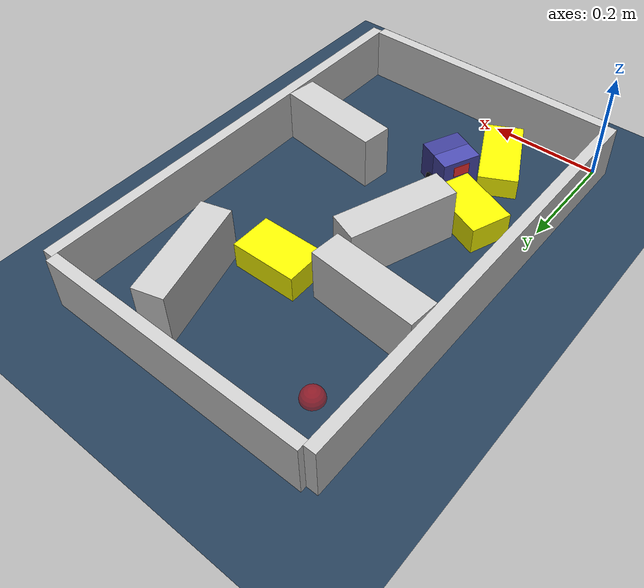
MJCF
<?xml version='1.0' encoding='utf-8'?>
<mujoco model="real_buildable">
  <compiler angle="degree" />
  <option timestep="0.002" integrator="implicitfast" iterations="100" cone="elliptic" />
  <default>
    <geom density="1" />
  </default>
  <asset>
    <texture builtin="gradient" height="3072" rgb1="0.3 0.5 0.7" rgb2="0 0 0" type="skybox" width="512" />
    <texture builtin="checker" height="300" mark="edge" markrgb="0.8 0.8 0.8" name="groundplane" rgb1="0.2 0.3 0.4" rgb2="0.1 0.2 0.3" type="2d" width="300" />
    <material name="groundplane" reflectance="0.2" texrepeat="5 5" texture="groundplane" texuniform="true" />
  </asset>
  <worldbody>
    <light dir="0 0 -1" directional="true" pos="0 0 1.5" />
    <geom name="floor" type="plane" condim="4" friction="0.5 0.005 0.001" material="groundplane" size="0 0 0.05" />
    <body name="walls">
      <geom name="wall_boundary_left" type="box" condim="4" friction="1.0 0.005 0.0001" rgba="0.8 0.8 0.8 1" pos="-0.010000 0.387500 0.050000" euler="0 0 0.000000" size="0.010000 0.397500 0.050000" />
      <geom name="wall_boundary_right" type="box" condim="4" friction="1.0 0.005 0.0001" rgba="0.8 0.8 0.8 1" pos="0.500000 0.387500 0.050000" euler="0 0 0.000000" size="0.010000 0.397500 0.050000" />
      <geom name="wall_boundary_bottom" type="box" condim="4" friction="1.0 0.005 0.0001" rgba="0.8 0.8 0.8 1" pos="0.245000 -0.010000 0.050000" euler="0 0 0.000000" size="0.245000 0.010000 0.050000" />
      <geom name="wall_boundary_top" type="box" condim="4" friction="1.0 0.005 0.0001" rgba="0.8 0.8 0.8 1" pos="0.245000 0.785000 0.050000" euler="0 0 0.000000" size="0.245000 0.010000 0.050000" />
      <geom name="wall_inner_1" type="box" condim="4" friction="1.0 0.005 0.0001" rgba="0.8 0.8 0.8 1" pos="0.389853 0.249346 0.050000" euler="0 0 -7.081968" size="0.097500 0.027500 0.050000" />
      <geom name="wall_inner_2" type="box" condim="4" friction="1.0 0.005 0.0001" rgba="0.8 0.8 0.8 1" pos="0.165224 0.378864 0.050000" euler="0 0 70.116952" size="0.097500 0.027500 0.050000" />
      <geom name="wall_inner_3" type="box" condim="4" friction="1.0 0.005 0.0001" rgba="0.8 0.8 0.8 1" pos="0.100000 0.521000 0.050000" euler="0 0 174.900000" size="0.097500 0.027500 0.050000" />
      <geom name="wall_inner_4" type="box" condim="4" friction="1.0 0.005 0.0001" rgba="0.8 0.8 0.8 1" pos="0.354000 0.651000 0.050000" euler="0 0 105.800000" size="0.097500 0.027500 0.050000" />
    </body>
    <body name="car" pos="0.18530028406669916 0.19198776391937245 0.01" quat="0.20746596817682991 0 0 0.97824223587435166">
      <freejoint name="car_freejoint" />
      <inertial pos="0 0 0.0375" mass="0.35" diaginertia="0.000266 0.000266 0.000286" />
      <geom name="front_chassis_collision" type="box" pos="0.0175 0 0.0375" size="0.0175 0.035 0.0325" rgba="0.3 0.3 0.7 1" />
      <geom name="rear_chassis_collision" type="box" pos="-0.0175 0 0.0375" size="0.0175 0.035 0.0325" rgba="0.25 0.25 0.6 1" />
      <geom name="front_marker" type="box" pos="0.034 0 0.0505" size="0.002 0.015 0.01" rgba="1 0.2 0.2 1" contype="0" conaffinity="0" />
      <body name="rear_support_body" pos="-0.03 0 0.0025">
        <joint name="rear_caster_joint" type="ball" damping="0.0001" />
        <inertial pos="0 0 0" mass="0.025" diaginertia="0.000001 0.000001 0.000001" />
        <geom name="rear_support" type="sphere" pos="0 0 0" size="0.0025" friction="0 0 0" rgba="0.7 0.1 0.1 1" />
      </body>
      <body name="front_support_body" pos="0.03 0 0.0025">
        <joint name="front_caster_joint" type="ball" damping="0.0001" />
        <inertial pos="0 0 0" mass="0.025" diaginertia="0.000001 0.000001 0.000001" />
        <geom name="front_support" type="sphere" pos="0 0 0" size="0.0025" friction="0 0 0" rgba="0.1 0.7 0.1 1" />
      </body>
      <body name="left_wheel" pos="0 0.0375 0.015">
        <inertial pos="0 0 0" mass="0.05" diaginertia="0.000003 0.000006 0.000003" />
        <joint name="left_wheel_joint" type="hinge" axis="0 1 0" damping="0.01" armature="0.0001" />
        <geom name="left_wheel_collision" type="cylinder" size="0.015 0.0005" euler="90 0 0" rgba="0.1 0.1 0.1 1" />
      </body>
      <body name="right_wheel" pos="0 -0.0375 0.015">
        <inertial pos="0 0 0" mass="0.05" diaginertia="0.000003 0.000006 0.000003" />
        <joint name="right_wheel_joint" type="hinge" axis="0 1 0" damping="0.01" armature="0.0001" />
        <geom name="right_wheel_collision" type="cylinder" size="0.015 0.0005" euler="90 0 0" rgba="0.1 0.1 0.1 1" />
      </body>
    </body>
    <body name="obstacle_0_movable">
      <geom name="obstacle_0_movable" condim="4" pos="0.10426052531385913 0.25171721734869623 0.025000000000000001" friction="1 0.005 0.0001" rgba="1 1 0 1" size="0.037500 0.060000 0.025000" type="box" mass="0.1" quat="0.82510938419438451 0 0 0.56497301184602045" />
      <joint type="free" />
    </body>
    <body name="obstacle_1_movable">
      <geom name="obstacle_1_movable" condim="4" pos="0.27899999999999991 0.52999999999999836 0.025000000000000001" friction="1 0.005 0.0001" rgba="1 1 0 1" size="0.037500 0.060000 0.025000" type="box" mass="0.1" quat="0.71079947387299236 0 0 -0.70339470281050398" />
      <joint type="free" />
    </body>
    <body name="obstacle_2_movable">
      <geom name="obstacle_2_movable" condim="4" pos="0.13637238146735101 0.09900121230745379 0.02" friction="1 0.005 0.0001" rgba="1 1 0 1" size="0.035000 0.075000 0.020000" type="box" mass="0.1" quat="0.97241225120478991 0 0 0.23326897287644702" />
      <joint type="free" />
    </body>
    <site name="goal" type="sphere" pos="0.080000 0.680000 0.0" size="0.02" rgba="1 0 0 0.5" />
  </worldbody>
  <actuator>
    <velocity name="left_wheel_drive" joint="left_wheel_joint" ctrlrange="-25 25" kv="0.75" forcerange="-0.5 0.5" />
    <velocity name="right_wheel_drive" joint="right_wheel_joint" ctrlrange="-25 25" kv="0.75" forcerange="-0.5 0.5" />
  </actuator>
</mujoco>
